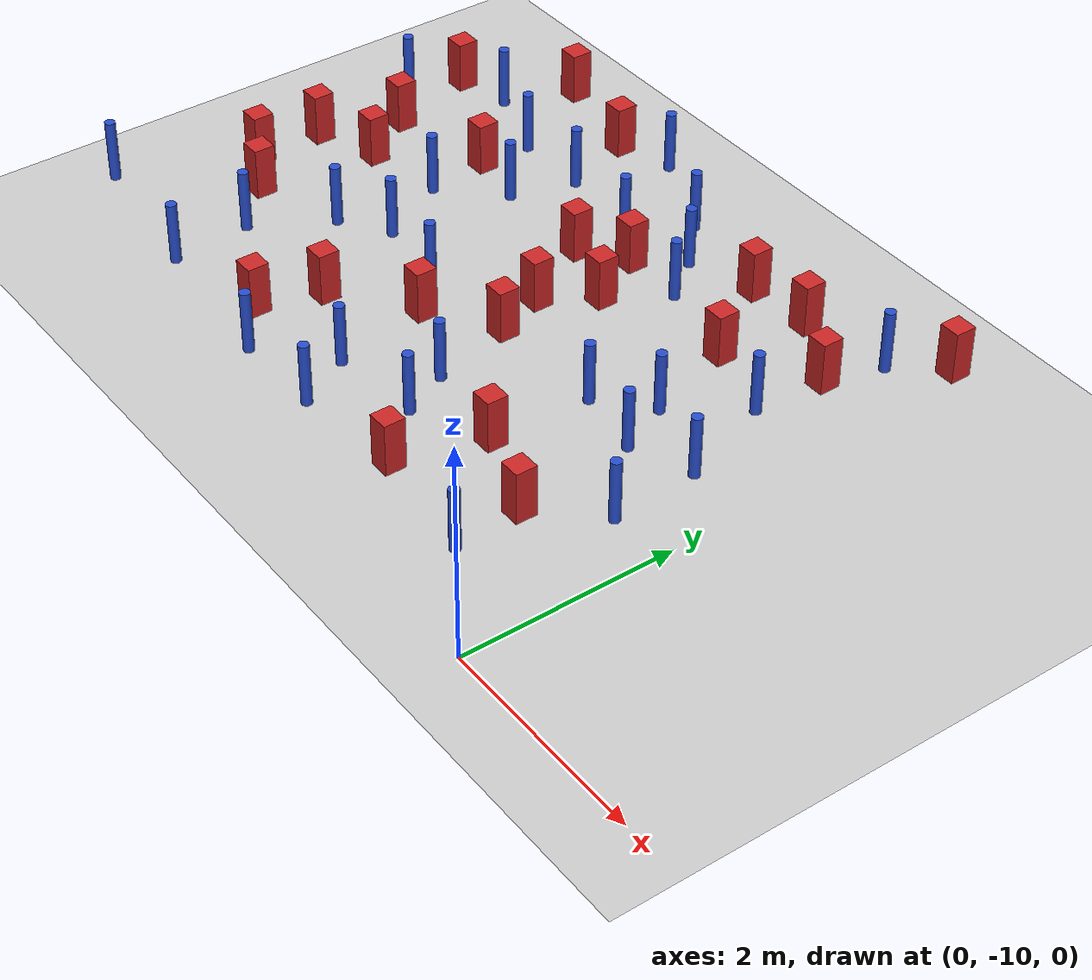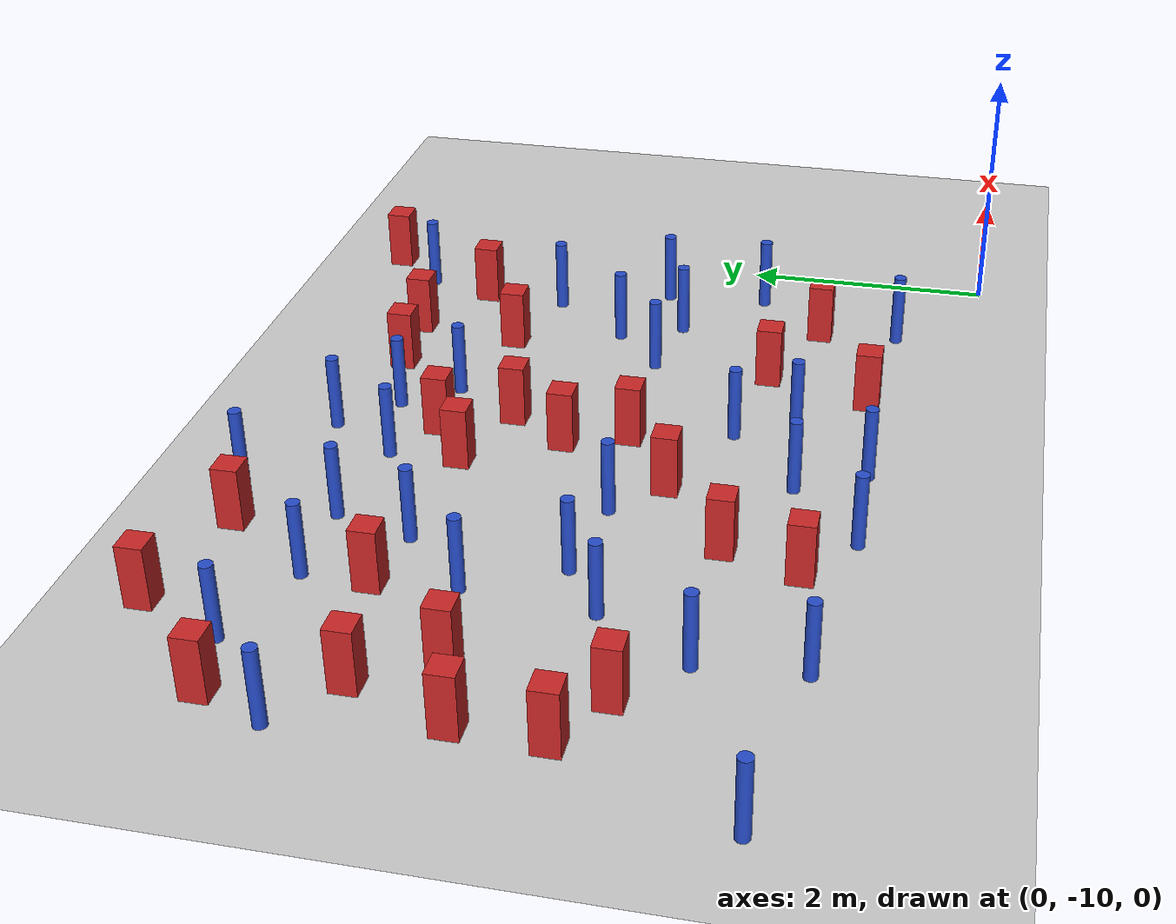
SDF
<sdf version="1.6">
 <world name="default">
  <model name="ground_plane">
   <static>1</static>
   <link name="link">
    <collision name="collision">
     <geometry><plane><normal>0 0 1</normal><size>100 100</size></plane></geometry>
     <surface><friction><ode><mu>100</mu><mu2>50</mu2></ode></friction></surface>
    </collision>
    <visual name="visual">
     <cast_shadows>0</cast_shadows>
     <geometry><plane><normal>0 0 1</normal><size>100 100</size></plane></geometry>
     <material>
      <ambient>1.0 1.0 1.0 1.0</ambient>
      <diffuse>0.8 0.8 0.8 1.0</diffuse>
      <specular>0.01 0.01 0.01 1.000000</specular>
     </material>
    </visual>
   </link>
  </model>
  <model name="pole_obstacle1">
   <static>true</static>
   <pose>-2.57879591383 -8.69562706285 7.38925637345e-09 -8.47170692793e-08 1.24976764408e-08 -1.74513093041e-07</pose>
   <link name="link">
    <pose>0 0 0.3 0 -0 0</pose>
    <inertial>
     <mass>1</mass>
     <inertia><ixx>0.145833</ixx><ixy>0</ixy><ixz>0</ixz><iyy>0.145833</iyy><iyz>0</iyz><izz>0.125</izz></inertia>
    </inertial>
    <collision name="collision">
     <geometry><cylinder><radius>0.05</radius><length>.6</length></cylinder></geometry>
    </collision>
    <visual name="visual">
     <geometry><cylinder><radius>0.05</radius><length>.6</length></cylinder></geometry>
     <material>
      <script><name>Gazebo/Blue</name><uri>file://media/materials/scripts/gazebo.material</uri></script>
     </material>
    </visual>
   </link>
  </model>
  <model name="pole_obstacle5">
   <static>true</static>
   <pose>-3.44873347191 -8.79434846552 7.38925637345e-09 -8.47170692799e-08 1.24976765012e-08 -1.74513093021e-07</pose>
   <link name="link">
    <pose>0 0 0.3 0 -0 0</pose>
    <inertial>
     <mass>1</mass>
     <inertia><ixx>0.145833</ixx><ixy>0</ixy><ixz>0</ixz><iyy>0.145833</iyy><iyz>0</iyz><izz>0.125</izz></inertia>
    </inertial>
    <collision name="collision">
     <geometry><cylinder><radius>0.05</radius><length>.6</length></cylinder></geometry>
    </collision>
    <visual name="visual">
     <geometry><cylinder><radius>0.05</radius><length>.6</length></cylinder></geometry>
     <material>
      <script><name>Gazebo/Blue</name><uri>file://media/materials/scripts/gazebo.material</uri></script>
     </material>
    </visual>
   </link>
  </model>
  <model name="square_post_obstacle11">
   <static>true</static>
   <pose>-6.49012242165 -7.72801190302 1.91545236811e-07 -7.35059704564e-06 1.12565212e-07 2.39332434364e-05</pose>
   <link name="link">
    <pose>0 0 0.25 0 -0 0</pose>
    <inertial>
     <mass>100</mass>
     <inertia>
      <ixx>0.166667</ixx>
      <ixy>0</ixy>
      <ixz>0</ixz>
      <iyy>0.166667</iyy>
      <iyz>0</iyz>
      <izz>0.166667</izz>
     </inertia>
    </inertial>
    <collision name="collision"><geometry><box><size>.2 .2 .5</size></box></geometry></collision>
    <visual name="visual">
     <geometry><box><size>.2 .2 .5</size></box></geometry>
     <material>
      <script><name>Gazebo/Red</name><uri>file://media/materials/scripts/gazebo.material</uri></script>
     </material>
    </visual>
   </link>
  </model>
  <model name="square_post_obstacle13">
   <static>true</static>
   <pose>-3.56713020802 -6.26825486642 1.91545236811e-07 -7.35059704564e-06 1.12565212e-07 2.39332434364e-05</pose>
   <link name="link">
    <pose>0 0 0.25 0 -0 0</pose>
    <inertial>
     <mass>100</mass>
     <inertia>
      <ixx>0.166667</ixx>
      <ixy>0</ixy>
      <ixz>0</ixz>
      <iyy>0.166667</iyy>
      <iyz>0</iyz>
      <izz>0.166667</izz>
     </inertia>
    </inertial>
    <collision name="collision"><geometry><box><size>.2 .2 .5</size></box></geometry></collision>
    <visual name="visual">
     <geometry><box><size>.2 .2 .5</size></box></geometry>
     <material>
      <script><name>Gazebo/Red</name><uri>file://media/materials/scripts/gazebo.material</uri></script>
     </material>
    </visual>
   </link>
  </model>
  <model name="square_post_obstacle18">
   <static>true</static>
   <pose>-6.46231089994 -5.47026156269 1.91545236811e-07 -7.35059704564e-06 1.12565212e-07 2.39332434364e-05</pose>
   <link name="link">
    <pose>0 0 0.25 0 -0 0</pose>
    <inertial>
     <mass>100</mass>
     <inertia>
      <ixx>0.166667</ixx>
      <ixy>0</ixy>
      <ixz>0</ixz>
      <iyy>0.166667</iyy>
      <iyz>0</iyz>
      <izz>0.166667</izz>
     </inertia>
    </inertial>
    <collision name="collision"><geometry><box><size>.2 .2 .5</size></box></geometry></collision>
    <visual name="visual">
     <geometry><box><size>.2 .2 .5</size></box></geometry>
     <material>
      <script><name>Gazebo/Red</name><uri>file://media/materials/scripts/gazebo.material</uri></script>
     </material>
    </visual>
   </link>
  </model>
  <model name="pole_obstacle12">
   <static>true</static>
   <pose>-1.17433486913 -7.53780862693 7.38925637345e-09 -8.47170692799e-08 1.24976765033e-08 -1.74513093018e-07</pose>
   <link name="link">
    <pose>0 0 0.3 0 -0 0</pose>
    <inertial>
     <mass>1</mass>
     <inertia><ixx>0.145833</ixx><ixy>0</ixy><ixz>0</ixz><iyy>0.145833</iyy><iyz>0</iyz><izz>0.125</izz></inertia>
    </inertial>
    <collision name="collision">
     <geometry><cylinder><radius>0.05</radius><length>.6</length></cylinder></geometry>
    </collision>
    <visual name="visual">
     <geometry><cylinder><radius>0.05</radius><length>.6</length></cylinder></geometry>
     <material>
      <script><name>Gazebo/Blue</name><uri>file://media/materials/scripts/gazebo.material</uri></script>
     </material>
    </visual>
   </link>
  </model>
  <model name="square_post_obstacle23">
   <static>true</static>
   <pose>-1.04127172048 -8.70368817412 1.91545236811e-07 -7.35059704564e-06 1.12565212e-07 2.39332434364e-05</pose>
   <link name="link">
    <pose>0 0 0.25 0 -0 0</pose>
    <inertial>
     <mass>100</mass>
     <inertia>
      <ixx>0.166667</ixx>
      <ixy>0</ixy>
      <ixz>0</ixz>
      <iyy>0.166667</iyy>
      <iyz>0</iyz>
      <izz>0.166667</izz>
     </inertia>
    </inertial>
    <collision name="collision"><geometry><box><size>.2 .2 .5</size></box></geometry></collision>
    <visual name="visual">
     <geometry><box><size>.2 .2 .5</size></box></geometry>
     <material>
      <script><name>Gazebo/Red</name><uri>file://media/materials/scripts/gazebo.material</uri></script>
     </material>
    </visual>
   </link>
  </model>
  <model name="pole_obstacle23">
   <static>true</static>
   <pose>-5.19805654267 -7.71516223001 7.38925637345e-09 -8.47170692796e-08 1.24976764786e-08 -1.74513093032e-07</pose>
   <link name="link">
    <pose>0 0 0.3 0 -0 0</pose>
    <inertial>
     <mass>1</mass>
     <inertia><ixx>0.145833</ixx><ixy>0</ixy><ixz>0</ixz><iyy>0.145833</iyy><iyz>0</iyz><izz>0.125</izz></inertia>
    </inertial>
    <collision name="collision">
     <geometry><cylinder><radius>0.05</radius><length>.6</length></cylinder></geometry>
    </collision>
    <visual name="visual">
     <geometry><cylinder><radius>0.05</radius><length>.6</length></cylinder></geometry>
     <material>
      <script><name>Gazebo/Blue</name><uri>file://media/materials/scripts/gazebo.material</uri></script>
     </material>
    </visual>
   </link>
  </model>
  <model name="square_post_obstacle36">
   <static>true</static>
   <pose>-1.66807878019 -6.18741317774 1.91545236811e-07 -7.35059704564e-06 1.12565212e-07 2.39332434364e-05</pose>
   <link name="link">
    <pose>0 0 0.25 0 -0 0</pose>
    <inertial>
     <mass>100</mass>
     <inertia>
      <ixx>0.166667</ixx>
      <ixy>0</ixy>
      <ixz>0</ixz>
      <iyy>0.166667</iyy>
      <iyz>0</iyz>
      <izz>0.166667</izz>
     </inertia>
    </inertial>
    <collision name="collision"><geometry><box><size>.2 .2 .5</size></box></geometry></collision>
    <visual name="visual">
     <geometry><box><size>.2 .2 .5</size></box></geometry>
     <material>
      <script><name>Gazebo/Red</name><uri>file://media/materials/scripts/gazebo.material</uri></script>
     </material>
    </visual>
   </link>
  </model>
  <model name="square_post_obstacle47">
   <static>true</static>
   <pose>-1.87268307081 -8.38355414212 1.91545236811e-07 -7.35059704564e-06 1.12565212e-07 2.39332434364e-05</pose>
   <link name="link">
    <pose>0 0 0.25 0 -0 0</pose>
    <inertial>
     <mass>100</mass>
     <inertia>
      <ixx>0.166667</ixx>
      <ixy>0</ixy>
      <ixz>0</ixz>
      <iyy>0.166667</iyy>
      <iyz>0</iyz>
      <izz>0.166667</izz>
     </inertia>
    </inertial>
    <collision name="collision"><geometry><box><size>.2 .2 .5</size></box></geometry></collision>
    <visual name="visual">
     <geometry><box><size>.2 .2 .5</size></box></geometry>
     <material>
      <script><name>Gazebo/Red</name><uri>file://media/materials/scripts/gazebo.material</uri></script>
     </material>
    </visual>
   </link>
  </model>
  <model name="square_post_obstacle52">
   <static>true</static>
   <pose>-4.50997872528 -8.98702234237 1.91545236811e-07 -7.35059704564e-06 1.12565212e-07 2.39332434364e-05</pose>
   <link name="link">
    <pose>0 0 0.25 0 -0 0</pose>
    <inertial>
     <mass>100</mass>
     <inertia>
      <ixx>0.166667</ixx>
      <ixy>0</ixy>
      <ixz>0</ixz>
      <iyy>0.166667</iyy>
      <iyz>0</iyz>
      <izz>0.166667</izz>
     </inertia>
    </inertial>
    <collision name="collision"><geometry><box><size>.2 .2 .5</size></box></geometry></collision>
    <visual name="visual">
     <geometry><box><size>.2 .2 .5</size></box></geometry>
     <material>
      <script><name>Gazebo/Red</name><uri>file://media/materials/scripts/gazebo.material</uri></script>
     </material>
    </visual>
   </link>
  </model>
  <model name="square_post_obstacle53">
   <static>true</static>
   <pose>-2.99348993324 -7.46620694219 1.91545236811e-07 -7.35059704564e-06 1.12565212e-07 2.39332434364e-05</pose>
   <link name="link">
    <pose>0 0 0.25 0 -0 0</pose>
    <inertial>
     <mass>100</mass>
     <inertia>
      <ixx>0.166667</ixx>
      <ixy>0</ixy>
      <ixz>0</ixz>
      <iyy>0.166667</iyy>
      <iyz>0</iyz>
      <izz>0.166667</izz>
     </inertia>
    </inertial>
    <collision name="collision"><geometry><box><size>.2 .2 .5</size></box></geometry></collision>
    <visual name="visual">
     <geometry><box><size>.2 .2 .5</size></box></geometry>
     <material>
      <script><name>Gazebo/Red</name><uri>file://media/materials/scripts/gazebo.material</uri></script>
     </material>
    </visual>
   </link>
  </model>
  <model name="square_post_obstacle54">
   <static>true</static>
   <pose>-4.66589982557 -4.93910889341 1.91545236811e-07 -7.35059704564e-06 1.12565212e-07 2.39332434364e-05</pose>
   <link name="link">
    <pose>0 0 0.25 0 -0 0</pose>
    <inertial>
     <mass>100</mass>
     <inertia>
      <ixx>0.166667</ixx>
      <ixy>0</ixy>
      <ixz>0</ixz>
      <iyy>0.166667</iyy>
      <iyz>0</iyz>
      <izz>0.166667</izz>
     </inertia>
    </inertial>
    <collision name="collision"><geometry><box><size>.2 .2 .5</size></box></geometry></collision>
    <visual name="visual">
     <geometry><box><size>.2 .2 .5</size></box></geometry>
     <material>
      <script><name>Gazebo/Red</name><uri>file://media/materials/scripts/gazebo.material</uri></script>
     </material>
    </visual>
   </link>
  </model>
  <model name="pole_obstacle52">
   <static>true</static>
   <pose>-3.99444468393 -7.52192957543 7.38925637345e-09 -8.47170692799e-08 1.24976764985e-08 -1.74513093022e-07</pose>
   <link name="link">
    <pose>0 0 0.3 0 -0 0</pose>
    <inertial>
     <mass>1</mass>
     <inertia><ixx>0.145833</ixx><ixy>0</ixy><ixz>0</ixz><iyy>0.145833</iyy><iyz>0</iyz><izz>0.125</izz></inertia>
    </inertial>
    <collision name="collision">
     <geometry><cylinder><radius>0.05</radius><length>.6</length></cylinder></geometry>
    </collision>
    <visual name="visual">
     <geometry><cylinder><radius>0.05</radius><length>.6</length></cylinder></geometry>
     <material>
      <script><name>Gazebo/Blue</name><uri>file://media/materials/scripts/gazebo.material</uri></script>
     </material>
    </visual>
   </link>
  </model>
  <model name="square_post_obstacle61">
   <static>true</static>
   <pose>-4.32040071736 -8.40277811597 1.91545236811e-07 -7.35059704564e-06 1.12565212e-07 2.39332434364e-05</pose>
   <link name="link">
    <pose>0 0 0.25 0 -0 0</pose>
    <inertial>
     <mass>100</mass>
     <inertia>
      <ixx>0.166667</ixx>
      <ixy>0</ixy>
      <ixz>0</ixz>
      <iyy>0.166667</iyy>
      <iyz>0</iyz>
      <izz>0.166667</izz>
     </inertia>
    </inertial>
    <collision name="collision"><geometry><box><size>.2 .2 .5</size></box></geometry></collision>
    <visual name="visual">
     <geometry><box><size>.2 .2 .5</size></box></geometry>
     <material>
      <script><name>Gazebo/Red</name><uri>file://media/materials/scripts/gazebo.material</uri></script>
     </material>
    </visual>
   </link>
  </model>
  <model name="pole_obstacle63">
   <static>true</static>
   <pose>-3.25835004807 -5.18188373508 7.38925637345e-09 -8.47170692794e-08 1.24976764468e-08 -1.7451309304e-07</pose>
   <link name="link">
    <pose>0 0 0.3 0 -0 0</pose>
    <inertial>
     <mass>1</mass>
     <inertia><ixx>0.145833</ixx><ixy>0</ixy><ixz>0</ixz><iyy>0.145833</iyy><iyz>0</iyz><izz>0.125</izz></inertia>
    </inertial>
    <collision name="collision">
     <geometry><cylinder><radius>0.05</radius><length>.6</length></cylinder></geometry>
    </collision>
    <visual name="visual">
     <geometry><cylinder><radius>0.05</radius><length>.6</length></cylinder></geometry>
     <material>
      <script><name>Gazebo/Blue</name><uri>file://media/materials/scripts/gazebo.material</uri></script>
     </material>
    </visual>
   </link>
  </model>
  <model name="pole_obstacle69">
   <static>true</static>
   <pose>-2.85407084934 -5.56770078589 7.38925637345e-09 -8.47170692798e-08 1.24976765033e-08 -1.74513093019e-07</pose>
   <link name="link">
    <pose>0 0 0.3 0 -0 0</pose>
    <inertial>
     <mass>1</mass>
     <inertia><ixx>0.145833</ixx><ixy>0</ixy><ixz>0</ixz><iyy>0.145833</iyy><iyz>0</iyz><izz>0.125</izz></inertia>
    </inertial>
    <collision name="collision">
     <geometry><cylinder><radius>0.05</radius><length>.6</length></cylinder></geometry>
    </collision>
    <visual name="visual">
     <geometry><cylinder><radius>0.05</radius><length>.6</length></cylinder></geometry>
     <material>
      <script><name>Gazebo/Blue</name><uri>file://media/materials/scripts/gazebo.material</uri></script>
     </material>
    </visual>
   </link>
  </model>
  <model name="pole_obstacle75">
   <static>true</static>
   <pose>-5.17115557987 -5.63020418589 7.38925637345e-09 -8.47170692796e-08 1.24976764786e-08 -1.74513093032e-07</pose>
   <link name="link">
    <pose>0 0 0.3 0 -0 0</pose>
    <inertial>
     <mass>1</mass>
     <inertia><ixx>0.145833</ixx><ixy>0</ixy><ixz>0</ixz><iyy>0.145833</iyy><iyz>0</iyz><izz>0.125</izz></inertia>
    </inertial>
    <collision name="collision">
     <geometry><cylinder><radius>0.05</radius><length>.6</length></cylinder></geometry>
    </collision>
    <visual name="visual">
     <geometry><cylinder><radius>0.05</radius><length>.6</length></cylinder></geometry>
     <material>
      <script><name>Gazebo/Blue</name><uri>file://media/materials/scripts/gazebo.material</uri></script>
     </material>
    </visual>
   </link>
  </model>
  <model name="pole_obstacle87">
   <static>true</static>
   <pose>-1.3972108892 -7.03985759873 7.38925637345e-09 -8.47170692799e-08 1.24976765033e-08 -1.74513093018e-07</pose>
   <link name="link">
    <pose>0 0 0.3 0 -0 0</pose>
    <inertial>
     <mass>1</mass>
     <inertia><ixx>0.145833</ixx><ixy>0</ixy><ixz>0</ixz><iyy>0.145833</iyy><iyz>0</iyz><izz>0.125</izz></inertia>
    </inertial>
    <collision name="collision">
     <geometry><cylinder><radius>0.05</radius><length>.6</length></cylinder></geometry>
    </collision>
    <visual name="visual">
     <geometry><cylinder><radius>0.05</radius><length>.6</length></cylinder></geometry>
     <material>
      <script><name>Gazebo/Blue</name><uri>file://media/materials/scripts/gazebo.material</uri></script>
     </material>
    </visual>
   </link>
  </model>
  <model name="square_post_obstacle81">
   <static>true</static>
   <pose>-2.19743540528 -5.38450985987 1.91545236811e-07 -7.35059704564e-06 1.12565212e-07 2.39332434364e-05</pose>
   <link name="link">
    <pose>0 0 0.25 0 -0 0</pose>
    <inertial>
     <mass>100</mass>
     <inertia>
      <ixx>0.166667</ixx>
      <ixy>0</ixy>
      <ixz>0</ixz>
      <iyy>0.166667</iyy>
      <iyz>0</iyz>
      <izz>0.166667</izz>
     </inertia>
    </inertial>
    <collision name="collision"><geometry><box><size>.2 .2 .5</size></box></geometry></collision>
    <visual name="visual">
     <geometry><box><size>.2 .2 .5</size></box></geometry>
     <material>
      <script><name>Gazebo/Red</name><uri>file://media/materials/scripts/gazebo.material</uri></script>
     </material>
    </visual>
   </link>
  </model>
  <model name="square_post_obstacle88">
   <static>true</static>
   <pose>-6.02962480044 -8.00078790942 1.91545236811e-07 -7.35059704564e-06 1.12565212e-07 2.39332434364e-05</pose>
   <link name="link">
    <pose>0 0 0.25 0 -0 0</pose>
    <inertial>
     <mass>100</mass>
     <inertia>
      <ixx>0.166667</ixx>
      <ixy>0</ixy>
      <ixz>0</ixz>
      <iyy>0.166667</iyy>
      <iyz>0</iyz>
      <izz>0.166667</izz>
     </inertia>
    </inertial>
    <collision name="collision"><geometry><box><size>.2 .2 .5</size></box></geometry></collision>
    <visual name="visual">
     <geometry><box><size>.2 .2 .5</size></box></geometry>
     <material>
      <script><name>Gazebo/Red</name><uri>file://media/materials/scripts/gazebo.material</uri></script>
     </material>
    </visual>
   </link>
  </model>
  <model name="pole_obstacle101">
   <static>true</static>
   <pose>-2.5505891465 -5.97092790341 7.38925637345e-09 -8.47170692798e-08 1.24976765033e-08 -1.74513093019e-07</pose>
   <link name="link">
    <pose>0 0 0.3 0 -0 0</pose>
    <inertial>
     <mass>1</mass>
     <inertia><ixx>0.145833</ixx><ixy>0</ixy><ixz>0</ixz><iyy>0.145833</iyy><iyz>0</iyz><izz>0.125</izz></inertia>
    </inertial>
    <collision name="collision">
     <geometry><cylinder><radius>0.05</radius><length>.6</length></cylinder></geometry>
    </collision>
    <visual name="visual">
     <geometry><cylinder><radius>0.05</radius><length>.6</length></cylinder></geometry>
     <material>
      <script><name>Gazebo/Blue</name><uri>file://media/materials/scripts/gazebo.material</uri></script>
     </material>
    </visual>
   </link>
  </model>
  <model name="pole_obstacle102">
   <static>true</static>
   <pose>-0.602050788423 -7.31471016894 7.38925637345e-09 -8.471706928e-08 1.24976765086e-08 -1.74513093015e-07</pose>
   <link name="link">
    <pose>0 0 0.3 0 -0 0</pose>
    <inertial>
     <mass>1</mass>
     <inertia><ixx>0.145833</ixx><ixy>0</ixy><ixz>0</ixz><iyy>0.145833</iyy><iyz>0</iyz><izz>0.125</izz></inertia>
    </inertial>
    <collision name="collision">
     <geometry><cylinder><radius>0.05</radius><length>.6</length></cylinder></geometry>
    </collision>
    <visual name="visual">
     <geometry><cylinder><radius>0.05</radius><length>.6</length></cylinder></geometry>
     <material>
      <script><name>Gazebo/Blue</name><uri>file://media/materials/scripts/gazebo.material</uri></script>
     </material>
    </visual>
   </link>
  </model>
  <model name="pole_obstacle106">
   <static>true</static>
   <pose>-0.740100490357 -5.17791412933 7.38925637345e-09 -8.471706928e-08 1.24976765086e-08 -1.74513093015e-07</pose>
   <link name="link">
    <pose>0 0 0.3 0 -0 0</pose>
    <inertial>
     <mass>1</mass>
     <inertia><ixx>0.145833</ixx><ixy>0</ixy><ixz>0</ixz><iyy>0.145833</iyy><iyz>0</iyz><izz>0.125</izz></inertia>
    </inertial>
    <collision name="collision">
     <geometry><cylinder><radius>0.05</radius><length>.6</length></cylinder></geometry>
    </collision>
    <visual name="visual">
     <geometry><cylinder><radius>0.05</radius><length>.6</length></cylinder></geometry>
     <material>
      <script><name>Gazebo/Blue</name><uri>file://media/materials/scripts/gazebo.material</uri></script>
     </material>
    </visual>
   </link>
  </model>
  <model name="square_post_obstacle96">
   <static>true</static>
   <pose>-6.20397489574 -6.35015846659 1.91545236811e-07 -7.35059704564e-06 1.12565212e-07 2.39332434364e-05</pose>
   <link name="link">
    <pose>0 0 0.25 0 -0 0</pose>
    <inertial>
     <mass>100</mass>
     <inertia>
      <ixx>0.166667</ixx>
      <ixy>0</ixy>
      <ixz>0</ixz>
      <iyy>0.166667</iyy>
      <iyz>0</iyz>
      <izz>0.166667</izz>
     </inertia>
    </inertial>
    <collision name="collision"><geometry><box><size>.2 .2 .5</size></box></geometry></collision>
    <visual name="visual">
     <geometry><box><size>.2 .2 .5</size></box></geometry>
     <material>
      <script><name>Gazebo/Red</name><uri>file://media/materials/scripts/gazebo.material</uri></script>
     </material>
    </visual>
   </link>
  </model>
  <model name="pole_obstacle117">
   <static>true</static>
   <pose>-4.05409786288 -9.33010596852 7.38925637345e-09 -8.471706928e-08 1.24976765081e-08 -1.74513093015e-07</pose>
   <link name="link">
    <pose>0 0 0.3 0 -0 0</pose>
    <inertial>
     <mass>1</mass>
     <inertia><ixx>0.145833</ixx><ixy>0</ixy><ixz>0</ixz><iyy>0.145833</iyy><iyz>0</iyz><izz>0.125</izz></inertia>
    </inertial>
    <collision name="collision">
     <geometry><cylinder><radius>0.05</radius><length>.6</length></cylinder></geometry>
    </collision>
    <visual name="visual">
     <geometry><cylinder><radius>0.05</radius><length>.6</length></cylinder></geometry>
     <material>
      <script><name>Gazebo/Blue</name><uri>file://media/materials/scripts/gazebo.material</uri></script>
     </material>
    </visual>
   </link>
  </model>
  <model name="square_post_obstacle110">
   <static>true</static>
   <pose>-2.87445363188 -6.51920192273 1.91545236811e-07 -7.35059704564e-06 1.12565212e-07 2.39332434364e-05</pose>
   <link name="link">
    <pose>0 0 0.25 0 -0 0</pose>
    <inertial>
     <mass>100</mass>
     <inertia>
      <ixx>0.166667</ixx>
      <ixy>0</ixy>
      <ixz>0</ixz>
      <iyy>0.166667</iyy>
      <iyz>0</iyz>
      <izz>0.166667</izz>
     </inertia>
    </inertial>
    <collision name="collision"><geometry><box><size>.2 .2 .5</size></box></geometry></collision>
    <visual name="visual">
     <geometry><box><size>.2 .2 .5</size></box></geometry>
     <material>
      <script><name>Gazebo/Red</name><uri>file://media/materials/scripts/gazebo.material</uri></script>
     </material>
    </visual>
   </link>
  </model>
  <model name="pole_obstacle125">
   <static>true</static>
   <pose>-5.5319207258 -9.18117260491 7.38925637345e-09 -8.471706928e-08 1.24976765081e-08 -1.74513093015e-07</pose>
   <link name="link">
    <pose>0 0 0.3 0 -0 0</pose>
    <inertial>
     <mass>1</mass>
     <inertia><ixx>0.145833</ixx><ixy>0</ixy><ixz>0</ixz><iyy>0.145833</iyy><iyz>0</iyz><izz>0.125</izz></inertia>
    </inertial>
    <collision name="collision">
     <geometry><cylinder><radius>0.05</radius><length>.6</length></cylinder></geometry>
    </collision>
    <visual name="visual">
     <geometry><cylinder><radius>0.05</radius><length>.6</length></cylinder></geometry>
     <material>
      <script><name>Gazebo/Blue</name><uri>file://media/materials/scripts/gazebo.material</uri></script>
     </material>
    </visual>
   </link>
  </model>
  <model name="pole_obstacle137">
   <static>true</static>
   <pose>-4.44087760514 -5.62081267578 7.38925637345e-09 -8.47170692796e-08 1.24976764786e-08 -1.74513093032e-07</pose>
   <link name="link">
    <pose>0 0 0.3 0 -0 0</pose>
    <inertial>
     <mass>1</mass>
     <inertia><ixx>0.145833</ixx><ixy>0</ixy><ixz>0</ixz><iyy>0.145833</iyy><iyz>0</iyz><izz>0.125</izz></inertia>
    </inertial>
    <collision name="collision">
     <geometry><cylinder><radius>0.05</radius><length>.6</length></cylinder></geometry>
    </collision>
    <visual name="visual">
     <geometry><cylinder><radius>0.05</radius><length>.6</length></cylinder></geometry>
     <material>
      <script><name>Gazebo/Blue</name><uri>file://media/materials/scripts/gazebo.material</uri></script>
     </material>
    </visual>
   </link>
  </model>
  <model name="square_post_obstacle122">
   <static>true</static>
   <pose>-5.17763288374 -6.1361924692 1.91545236811e-07 -7.35059704564e-06 1.12565212e-07 2.39332434364e-05</pose>
   <link name="link">
    <pose>0 0 0.25 0 -0 0</pose>
    <inertial>
     <mass>100</mass>
     <inertia>
      <ixx>0.166667</ixx>
      <ixy>0</ixy>
      <ixz>0</ixz>
      <iyy>0.166667</iyy>
      <iyz>0</iyz>
      <izz>0.166667</izz>
     </inertia>
    </inertial>
    <collision name="collision"><geometry><box><size>.2 .2 .5</size></box></geometry></collision>
    <visual name="visual">
     <geometry><box><size>.2 .2 .5</size></box></geometry>
     <material>
      <script><name>Gazebo/Red</name><uri>file://media/materials/scripts/gazebo.material</uri></script>
     </material>
    </visual>
   </link>
  </model>
  <model name="pole_obstacle142">
   <static>true</static>
   <pose>-6.99128204313 -8.97961503089 7.38925637345e-09 -8.471706928e-08 1.24976765081e-08 -1.74513093015e-07</pose>
   <link name="link">
    <pose>0 0 0.3 0 -0 0</pose>
    <inertial>
     <mass>1</mass>
     <inertia><ixx>0.145833</ixx><ixy>0</ixy><ixz>0</ixz><iyy>0.145833</iyy><iyz>0</iyz><izz>0.125</izz></inertia>
    </inertial>
    <collision name="collision">
     <geometry><cylinder><radius>0.05</radius><length>.6</length></cylinder></geometry>
    </collision>
    <visual name="visual">
     <geometry><cylinder><radius>0.05</radius><length>.6</length></cylinder></geometry>
     <material>
      <script><name>Gazebo/Blue</name><uri>file://media/materials/scripts/gazebo.material</uri></script>
     </material>
    </visual>
   </link>
  </model>
  <model name="square_post_obstacle132">
   <static>true</static>
   <pose>-6.47102935262 -7.08984208259 1.91545236811e-07 -7.35059704564e-06 1.12565212e-07 2.39332434364e-05</pose>
   <link name="link">
    <pose>0 0 0.25 0 -0 0</pose>
    <inertial>
     <mass>100</mass>
     <inertia>
      <ixx>0.166667</ixx>
      <ixy>0</ixy>
      <ixz>0</ixz>
      <iyy>0.166667</iyy>
      <iyz>0</iyz>
      <izz>0.166667</izz>
     </inertia>
    </inertial>
    <collision name="collision"><geometry><box><size>.2 .2 .5</size></box></geometry></collision>
    <visual name="visual">
     <geometry><box><size>.2 .2 .5</size></box></geometry>
     <material>
      <script><name>Gazebo/Red</name><uri>file://media/materials/scripts/gazebo.material</uri></script>
     </material>
    </visual>
   </link>
  </model>
  <model name="pole_obstacle143">
   <static>true</static>
   <pose>-2.79463382215 -8.24266250953 7.38925637345e-09 -8.47170692793e-08 1.24976764408e-08 -1.74513093041e-07</pose>
   <link name="link">
    <pose>0 0 0.3 0 -0 0</pose>
    <inertial>
     <mass>1</mass>
     <inertia><ixx>0.145833</ixx><ixy>0</ixy><ixz>0</ixz><iyy>0.145833</iyy><iyz>0</iyz><izz>0.125</izz></inertia>
    </inertial>
    <collision name="collision">
     <geometry><cylinder><radius>0.05</radius><length>.6</length></cylinder></geometry>
    </collision>
    <visual name="visual">
     <geometry><cylinder><radius>0.05</radius><length>.6</length></cylinder></geometry>
     <material>
      <script><name>Gazebo/Blue</name><uri>file://media/materials/scripts/gazebo.material</uri></script>
     </material>
    </visual>
   </link>
  </model>
  <model name="square_post_obstacle136">
   <static>true</static>
   <pose>-5.66086833554 -4.71069362555 1.91545236811e-07 -7.35059704564e-06 1.12565212e-07 2.39332434364e-05</pose>
   <link name="link">
    <pose>0 0 0.25 0 -0 0</pose>
    <inertial>
     <mass>100</mass>
     <inertia>
      <ixx>0.166667</ixx>
      <ixy>0</ixy>
      <ixz>0</ixz>
      <iyy>0.166667</iyy>
      <iyz>0</iyz>
      <izz>0.166667</izz>
     </inertia>
    </inertial>
    <collision name="collision"><geometry><box><size>.2 .2 .5</size></box></geometry></collision>
    <visual name="visual">
     <geometry><box><size>.2 .2 .5</size></box></geometry>
     <material>
      <script><name>Gazebo/Red</name><uri>file://media/materials/scripts/gazebo.material</uri></script>
     </material>
    </visual>
   </link>
  </model>
  <model name="square_post_obstacle137">
   <static>true</static>
   <pose>-5.87043463142 -6.87648870539 1.91545236811e-07 -7.35059704564e-06 1.12565212e-07 2.39332434364e-05</pose>
   <link name="link">
    <pose>0 0 0.25 0 -0 0</pose>
    <inertial>
     <mass>100</mass>
     <inertia>
      <ixx>0.166667</ixx>
      <ixy>0</ixy>
      <ixz>0</ixz>
      <iyy>0.166667</iyy>
      <iyz>0</iyz>
      <izz>0.166667</izz>
     </inertia>
    </inertial>
    <collision name="collision"><geometry><box><size>.2 .2 .5</size></box></geometry></collision>
    <visual name="visual">
     <geometry><box><size>.2 .2 .5</size></box></geometry>
     <material>
      <script><name>Gazebo/Red</name><uri>file://media/materials/scripts/gazebo.material</uri></script>
     </material>
    </visual>
   </link>
  </model>
  <model name="pole_obstacle153">
   <static>true</static>
   <pose>-5.59678012563 -8.4208086785 7.38925637345e-09 -8.471706928e-08 1.24976765081e-08 -1.74513093015e-07</pose>
   <link name="link">
    <pose>0 0 0.3 0 -0 0</pose>
    <inertial>
     <mass>1</mass>
     <inertia><ixx>0.145833</ixx><ixy>0</ixy><ixz>0</ixz><iyy>0.145833</iyy><iyz>0</iyz><izz>0.125</izz></inertia>
    </inertial>
    <collision name="collision">
     <geometry><cylinder><radius>0.05</radius><length>.6</length></cylinder></geometry>
    </collision>
    <visual name="visual">
     <geometry><cylinder><radius>0.05</radius><length>.6</length></cylinder></geometry>
     <material>
      <script><name>Gazebo/Blue</name><uri>file://media/materials/scripts/gazebo.material</uri></script>
     </material>
    </visual>
   </link>
  </model>
  <model name="square_post_obstacle145">
   <static>true</static>
   <pose>-3.62385692356 -7.87376206951 1.91545236811e-07 -7.35059704564e-06 1.12565212e-07 2.39332434364e-05</pose>
   <link name="link">
    <pose>0 0 0.25 0 -0 0</pose>
    <inertial>
     <mass>100</mass>
     <inertia>
      <ixx>0.166667</ixx>
      <ixy>0</ixy>
      <ixz>0</ixz>
      <iyy>0.166667</iyy>
      <iyz>0</iyz>
      <izz>0.166667</izz>
     </inertia>
    </inertial>
    <collision name="collision"><geometry><box><size>.2 .2 .5</size></box></geometry></collision>
    <visual name="visual">
     <geometry><box><size>.2 .2 .5</size></box></geometry>
     <material>
      <script><name>Gazebo/Red</name><uri>file://media/materials/scripts/gazebo.material</uri></script>
     </material>
    </visual>
   </link>
  </model>
  <model name="square_post_obstacle147">
   <static>true</static>
   <pose>-3.14540140271 -5.98189779576 1.91545236811e-07 -7.35059704564e-06 1.12565212e-07 2.39332434364e-05</pose>
   <link name="link">
    <pose>0 0 0.25 0 -0 0</pose>
    <inertial>
     <mass>100</mass>
     <inertia>
      <ixx>0.166667</ixx>
      <ixy>0</ixy>
      <ixz>0</ixz>
      <iyy>0.166667</iyy>
      <iyz>0</iyz>
      <izz>0.166667</izz>
     </inertia>
    </inertial>
    <collision name="collision"><geometry><box><size>.2 .2 .5</size></box></geometry></collision>
    <visual name="visual">
     <geometry><box><size>.2 .2 .5</size></box></geometry>
     <material>
      <script><name>Gazebo/Red</name><uri>file://media/materials/scripts/gazebo.material</uri></script>
     </material>
    </visual>
   </link>
  </model>
  <model name="square_post_obstacle148">
   <static>true</static>
   <pose>-1.56467595669 -5.33889760043 1.91545236811e-07 -7.35059704564e-06 1.12565212e-07 2.39332434364e-05</pose>
   <link name="link">
    <pose>0 0 0.25 0 -0 0</pose>
    <inertial>
     <mass>100</mass>
     <inertia>
      <ixx>0.166667</ixx>
      <ixy>0</ixy>
      <ixz>0</ixz>
      <iyy>0.166667</iyy>
      <iyz>0</iyz>
      <izz>0.166667</izz>
     </inertia>
    </inertial>
    <collision name="collision"><geometry><box><size>.2 .2 .5</size></box></geometry></collision>
    <visual name="visual">
     <geometry><box><size>.2 .2 .5</size></box></geometry>
     <material>
      <script><name>Gazebo/Red</name><uri>file://media/materials/scripts/gazebo.material</uri></script>
     </material>
    </visual>
   </link>
  </model>
  <model name="pole_obstacle165">
   <static>true</static>
   <pose>-4.61155024206 -6.23009690405 7.38925637345e-09 -8.47170692796e-08 1.24976764786e-08 -1.74513093032e-07</pose>
   <link name="link">
    <pose>0 0 0.3 0 -0 0</pose>
    <inertial>
     <mass>1</mass>
     <inertia><ixx>0.145833</ixx><ixy>0</ixy><ixz>0</ixz><iyy>0.145833</iyy><iyz>0</iyz><izz>0.125</izz></inertia>
    </inertial>
    <collision name="collision">
     <geometry><cylinder><radius>0.05</radius><length>.6</length></cylinder></geometry>
    </collision>
    <visual name="visual">
     <geometry><cylinder><radius>0.05</radius><length>.6</length></cylinder></geometry>
     <material>
      <script><name>Gazebo/Blue</name><uri>file://media/materials/scripts/gazebo.material</uri></script>
     </material>
    </visual>
   </link>
  </model>
  <model name="pole_obstacle167">
   <static>true</static>
   <pose>-0.99173239898 -9.34343745803 7.38925637345e-09 -8.47170692797e-08 1.24976764802e-08 -1.74513093032e-07</pose>
   <link name="link">
    <pose>0 0 0.3 0 -0 0</pose>
    <inertial>
     <mass>1</mass>
     <inertia><ixx>0.145833</ixx><ixy>0</ixy><ixz>0</ixz><iyy>0.145833</iyy><iyz>0</iyz><izz>0.125</izz></inertia>
    </inertial>
    <collision name="collision">
     <geometry><cylinder><radius>0.05</radius><length>.6</length></cylinder></geometry>
    </collision>
    <visual name="visual">
     <geometry><cylinder><radius>0.05</radius><length>.6</length></cylinder></geometry>
     <material>
      <script><name>Gazebo/Blue</name><uri>file://media/materials/scripts/gazebo.material</uri></script>
     </material>
    </visual>
   </link>
  </model>
  <model name="pole_obstacle169">
   <static>true</static>
   <pose>-5.11545028183 -6.73662300586 7.38925637345e-09 -8.47170692796e-08 1.24976764786e-08 -1.74513093032e-07</pose>
   <link name="link">
    <pose>0 0 0.3 0 -0 0</pose>
    <inertial>
     <mass>1</mass>
     <inertia><ixx>0.145833</ixx><ixy>0</ixy><ixz>0</ixz><iyy>0.145833</iyy><iyz>0</iyz><izz>0.125</izz></inertia>
    </inertial>
    <collision name="collision">
     <geometry><cylinder><radius>0.05</radius><length>.6</length></cylinder></geometry>
    </collision>
    <visual name="visual">
     <geometry><cylinder><radius>0.05</radius><length>.6</length></cylinder></geometry>
     <material>
      <script><name>Gazebo/Blue</name><uri>file://media/materials/scripts/gazebo.material</uri></script>
     </material>
    </visual>
   </link>
  </model>
  <model name="square_post_obstacle163">
   <static>true</static>
   <pose>-0.369033122123 -4.76135442632 1.91545236811e-07 -7.35059704564e-06 1.12565212e-07 2.39332434364e-05</pose>
   <link name="link">
    <pose>0 0 0.25 0 -0 0</pose>
    <inertial>
     <mass>100</mass>
     <inertia>
      <ixx>0.166667</ixx>
      <ixy>0</ixy>
      <ixz>0</ixz>
      <iyy>0.166667</iyy>
      <iyz>0</iyz>
      <izz>0.166667</izz>
     </inertia>
    </inertial>
    <collision name="collision"><geometry><box><size>.2 .2 .5</size></box></geometry></collision>
    <visual name="visual">
     <geometry><box><size>.2 .2 .5</size></box></geometry>
     <material>
      <script><name>Gazebo/Red</name><uri>file://media/materials/scripts/gazebo.material</uri></script>
     </material>
    </visual>
   </link>
  </model>
  <model name="square_post_obstacle170">
   <static>true</static>
   <pose>-3.17568963416 -6.97992622739 1.91545236811e-07 -7.35059704564e-06 1.12565212e-07 2.39332434364e-05</pose>
   <link name="link">
    <pose>0 0 0.25 0 -0 0</pose>
    <inertial>
     <mass>100</mass>
     <inertia>
      <ixx>0.166667</ixx>
      <ixy>0</ixy>
      <ixz>0</ixz>
      <iyy>0.166667</iyy>
      <iyz>0</iyz>
      <izz>0.166667</izz>
     </inertia>
    </inertial>
    <collision name="collision"><geometry><box><size>.2 .2 .5</size></box></geometry></collision>
    <visual name="visual">
     <geometry><box><size>.2 .2 .5</size></box></geometry>
     <material>
      <script><name>Gazebo/Red</name><uri>file://media/materials/scripts/gazebo.material</uri></script>
     </material>
    </visual>
   </link>
  </model>
  <model name="pole_obstacle184">
   <static>true</static>
   <pose>-6.66292247286 -5.95555854279 7.38925637345e-09 -8.47170692796e-08 1.24976764786e-08 -1.74513093032e-07</pose>
   <link name="link">
    <pose>0 0 0.3 0 -0 0</pose>
    <inertial>
     <mass>1</mass>
     <inertia><ixx>0.145833</ixx><ixy>0</ixy><ixz>0</ixz><iyy>0.145833</iyy><iyz>0</iyz><izz>0.125</izz></inertia>
    </inertial>
    <collision name="collision">
     <geometry><cylinder><radius>0.05</radius><length>.6</length></cylinder></geometry>
    </collision>
    <visual name="visual">
     <geometry><cylinder><radius>0.05</radius><length>.6</length></cylinder></geometry>
     <material>
      <script><name>Gazebo/Blue</name><uri>file://media/materials/scripts/gazebo.material</uri></script>
     </material>
    </visual>
   </link>
  </model>
  <model name="square_post_obstacle176">
   <static>true</static>
   <pose>-0.888658869404 -5.737088763 1.91545236811e-07 -7.35059704564e-06 1.12565212e-07 2.39332434364e-05</pose>
   <link name="link">
    <pose>0 0 0.25 0 -0 0</pose>
    <inertial>
     <mass>100</mass>
     <inertia>
      <ixx>0.166667</ixx>
      <ixy>0</ixy>
      <ixz>0</ixz>
      <iyy>0.166667</iyy>
      <iyz>0</iyz>
      <izz>0.166667</izz>
     </inertia>
    </inertial>
    <collision name="collision"><geometry><box><size>.2 .2 .5</size></box></geometry></collision>
    <visual name="visual">
     <geometry><box><size>.2 .2 .5</size></box></geometry>
     <material>
      <script><name>Gazebo/Red</name><uri>file://media/materials/scripts/gazebo.material</uri></script>
     </material>
    </visual>
   </link>
  </model>
  <model name="square_post_obstacle181">
   <static>true</static>
   <pose>-2.11201450225 -9.20364853538 1.91545236811e-07 -7.35059704564e-06 1.12565212e-07 2.39332434364e-05</pose>
   <link name="link">
    <pose>0 0 0.25 0 -0 0</pose>
    <inertial>
     <mass>100</mass>
     <inertia>
      <ixx>0.166667</ixx>
      <ixy>0</ixy>
      <ixz>0</ixz>
      <iyy>0.166667</iyy>
      <iyz>0</iyz>
      <izz>0.166667</izz>
     </inertia>
    </inertial>
    <collision name="collision"><geometry><box><size>.2 .2 .5</size></box></geometry></collision>
    <visual name="visual">
     <geometry><box><size>.2 .2 .5</size></box></geometry>
     <material>
      <script><name>Gazebo/Red</name><uri>file://media/materials/scripts/gazebo.material</uri></script>
     </material>
    </visual>
   </link>
  </model>
  <model name="pole_obstacle190">
   <static>true</static>
   <pose>-3.1678446373 -9.31342715448 7.38925637345e-09 -8.47170692799e-08 1.24976765012e-08 -1.74513093021e-07</pose>
   <link name="link">
    <pose>0 0 0.3 0 -0 0</pose>
    <inertial>
     <mass>1</mass>
     <inertia><ixx>0.145833</ixx><ixy>0</ixy><ixz>0</ixz><iyy>0.145833</iyy><iyz>0</iyz><izz>0.125</izz></inertia>
    </inertial>
    <collision name="collision">
     <geometry><cylinder><radius>0.05</radius><length>.6</length></cylinder></geometry>
    </collision>
    <visual name="visual">
     <geometry><cylinder><radius>0.05</radius><length>.6</length></cylinder></geometry>
     <material>
      <script><name>Gazebo/Blue</name><uri>file://media/materials/scripts/gazebo.material</uri></script>
     </material>
    </visual>
   </link>
  </model>
  <model name="pole_obstacle199">
   <static>true</static>
   <pose>-5.9399745518 -5.35225894924 7.38925637345e-09 -8.47170692796e-08 1.24976764786e-08 -1.74513093032e-07</pose>
   <link name="link">
    <pose>0 0 0.3 0 -0 0</pose>
    <inertial>
     <mass>1</mass>
     <inertia><ixx>0.145833</ixx><ixy>0</ixy><ixz>0</ixz><iyy>0.145833</iyy><iyz>0</iyz><izz>0.125</izz></inertia>
    </inertial>
    <collision name="collision">
     <geometry><cylinder><radius>0.05</radius><length>.6</length></cylinder></geometry>
    </collision>
    <visual name="visual">
     <geometry><cylinder><radius>0.05</radius><length>.6</length></cylinder></geometry>
     <material>
      <script><name>Gazebo/Blue</name><uri>file://media/materials/scripts/gazebo.material</uri></script>
     </material>
    </visual>
   </link>
  </model>
  <model name="pole_obstacle204">
   <static>true</static>
   <pose>-1.83866872901 -7.42660982201 7.38925637345e-09 -8.47170692799e-08 1.24976765033e-08 -1.74513093018e-07</pose>
   <link name="link">
    <pose>0 0 0.3 0 -0 0</pose>
    <inertial>
     <mass>1</mass>
     <inertia><ixx>0.145833</ixx><ixy>0</ixy><ixz>0</ixz><iyy>0.145833</iyy><iyz>0</iyz><izz>0.125</izz></inertia>
    </inertial>
    <collision name="collision">
     <geometry><cylinder><radius>0.05</radius><length>.6</length></cylinder></geometry>
    </collision>
    <visual name="visual">
     <geometry><cylinder><radius>0.05</radius><length>.6</length></cylinder></geometry>
     <material>
      <script><name>Gazebo/Blue</name><uri>file://media/materials/scripts/gazebo.material</uri></script>
     </material>
    </visual>
   </link>
  </model>
  <model name="pole_obstacle206">
   <static>true</static>
   <pose>-4.75359999043 -7.41888997922 7.38925637345e-09 -8.47170692796e-08 1.24976764786e-08 -1.74513093032e-07</pose>
   <link name="link">
    <pose>0 0 0.3 0 -0 0</pose>
    <inertial>
     <mass>1</mass>
     <inertia><ixx>0.145833</ixx><ixy>0</ixy><ixz>0</ixz><iyy>0.145833</iyy><iyz>0</iyz><izz>0.125</izz></inertia>
    </inertial>
    <collision name="collision">
     <geometry><cylinder><radius>0.05</radius><length>.6</length></cylinder></geometry>
    </collision>
    <visual name="visual">
     <geometry><cylinder><radius>0.05</radius><length>.6</length></cylinder></geometry>
     <material>
      <script><name>Gazebo/Blue</name><uri>file://media/materials/scripts/gazebo.material</uri></script>
     </material>
    </visual>
   </link>
  </model>
  <model name="pole_obstacle209">
   <static>true</static>
   <pose>-0.543416990425 -8.15132997922 7.38925637345e-09 -8.47170692796e-08 1.24976764704e-08 -1.74513093037e-07</pose>
   <link name="link">
    <pose>0 0 0.3 0 -0 0</pose>
    <inertial>
     <mass>1</mass>
     <inertia><ixx>0.145833</ixx><ixy>0</ixy><ixz>0</ixz><iyy>0.145833</iyy><iyz>0</iyz><izz>0.125</izz></inertia>
    </inertial>
    <collision name="collision">
     <geometry><cylinder><radius>0.05</radius><length>.6</length></cylinder></geometry>
    </collision>
    <visual name="visual">
     <geometry><cylinder><radius>0.05</radius><length>.6</length></cylinder></geometry>
     <material>
      <script><name>Gazebo/Blue</name><uri>file://media/materials/scripts/gazebo.material</uri></script>
     </material>
    </visual>
   </link>
  </model>
  <model name="pole_obstacle214">
   <static>true</static>
   <pose>-0.933630990425 -6.40983997922 7.38925637345e-09 -8.471706928e-08 1.24976765118e-08 -1.74513093013e-07</pose>
   <link name="link">
    <pose>0 0 0.3 0 -0 0</pose>
    <inertial>
     <mass>1</mass>
     <inertia><ixx>0.145833</ixx><ixy>0</ixy><ixz>0</ixz><iyy>0.145833</iyy><iyz>0</iyz><izz>0.125</izz></inertia>
    </inertial>
    <collision name="collision">
     <geometry><cylinder><radius>0.05</radius><length>.6</length></cylinder></geometry>
    </collision>
    <visual name="visual">
     <geometry><cylinder><radius>0.05</radius><length>.6</length></cylinder></geometry>
     <material>
      <script><name>Gazebo/Blue</name><uri>file://media/materials/scripts/gazebo.material</uri></script>
     </material>
    </visual>
   </link>
  </model>
  <model name="pole_obstacle222">
   <static>true</static>
   <pose>-3.57945999043 -5.72270997922 7.38925637345e-09 -8.47170692798e-08 1.24976765033e-08 -1.74513093019e-07</pose>
   <link name="link">
    <pose>0 0 0.3 0 -0 0</pose>
    <inertial>
     <mass>1</mass>
     <inertia><ixx>0.145833</ixx><ixy>0</ixy><ixz>0</ixz><iyy>0.145833</iyy><iyz>0</iyz><izz>0.125</izz></inertia>
    </inertial>
    <collision name="collision">
     <geometry><cylinder><radius>0.05</radius><length>.6</length></cylinder></geometry>
    </collision>
    <visual name="visual">
     <geometry><cylinder><radius>0.05</radius><length>.6</length></cylinder></geometry>
     <material>
      <script><name>Gazebo/Blue</name><uri>file://media/materials/scripts/gazebo.material</uri></script>
     </material>
    </visual>
   </link>
  </model>
  <model name="pole_obstacle229">
   <static>true</static>
   <pose>-4.14285999043 -4.76881997922 7.38925637345e-09 -8.47170692796e-08 1.24976764786e-08 -1.74513093032e-07</pose>
   <link name="link">
    <pose>0 0 0.3 0 -0 0</pose>
    <inertial>
     <mass>1</mass>
     <inertia><ixx>0.145833</ixx><ixy>0</ixy><ixz>0</ixz><iyy>0.145833</iyy><iyz>0</iyz><izz>0.125</izz></inertia>
    </inertial>
    <collision name="collision">
     <geometry><cylinder><radius>0.05</radius><length>.6</length></cylinder></geometry>
    </collision>
    <visual name="visual">
     <geometry><cylinder><radius>0.05</radius><length>.6</length></cylinder></geometry>
     <material>
      <script><name>Gazebo/Blue</name><uri>file://media/materials/scripts/gazebo.material</uri></script>
     </material>
    </visual>
   </link>
  </model>
 </world>
</sdf>
